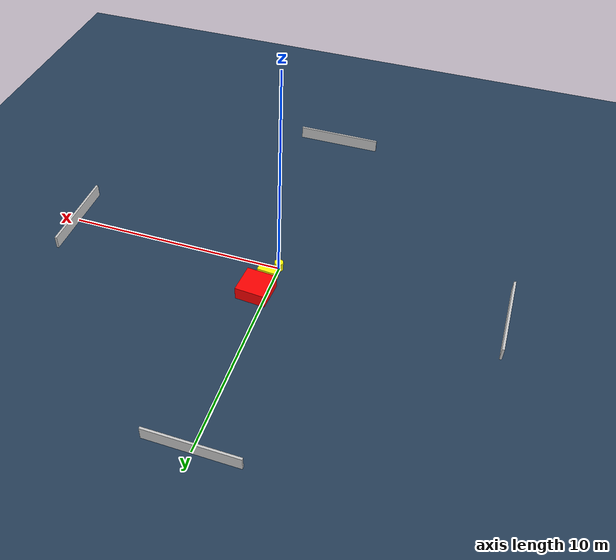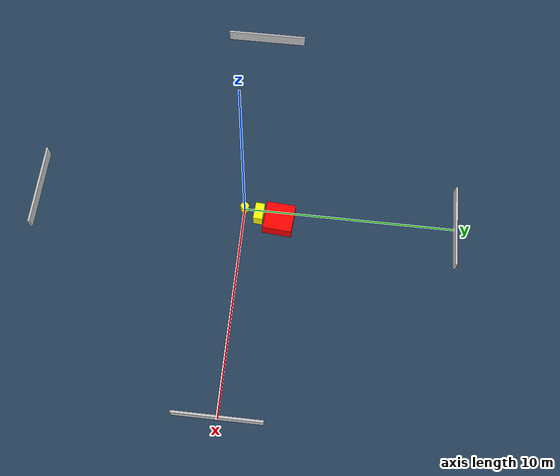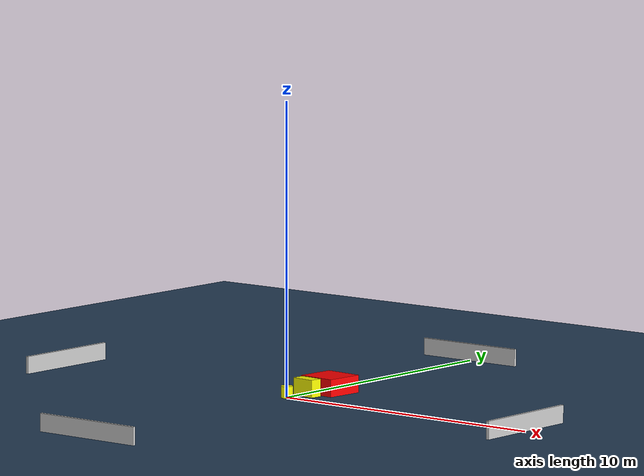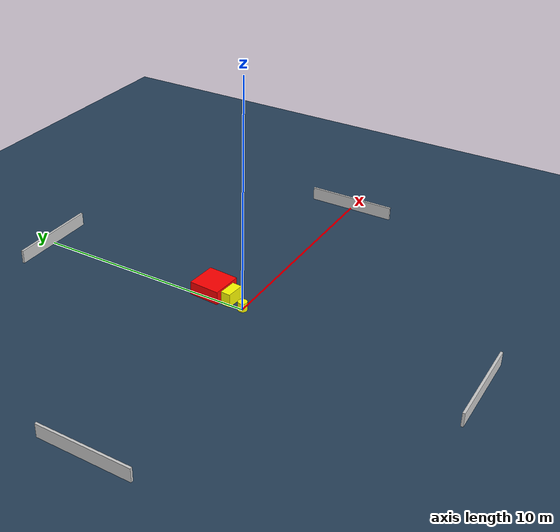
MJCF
<?xml version="1.0" ?>
<mujoco model="generated_environment">
  <option timestep="0.01" integrator="RK4" cone="elliptic"/>
  <default>
    <geom density="1"/>
  </default>
  <asset>
    <texture builtin="gradient" height="3072" name="skybox" rgb1="0.3 0.5 0.7" rgb2="0 0 0" type="skybox" width="512"/>
    <texture builtin="checker" height="300" name="groundplane" rgb1="0.2 0.3 0.4" rgb2="0.1 0.2 0.3" type="2d" width="300"/>
    <material name="groundplane" reflectance="0.2" texrepeat="5 5" texture="groundplane"/>
  </asset>
  <worldbody>
    <light dir="0 0 -1" directional="true" pos="0 0 1.5"/>
    <geom condim="3" friction="0.5 0.005 0.001" material="groundplane" name="floor" pos="0 0 0" size="0 0 0.05" type="plane"/>
    <body name="walls">
      <geom name="wall_1" condim="4" pos="-10.0 0.0 0.3" rgba="0.800000011920929 0.800000011920929 0.800000011920929 1.0" size="0.05 2.0 0.3" type="box"/>
      <geom name="wall_2" condim="4" pos="10.0 0.0 0.3" rgba="0.800000011920929 0.800000011920929 0.800000011920929 1.0" size="0.05 2.0 0.3" type="box"/>
      <geom name="wall_3" condim="4" pos="0.0 -10.0 0.3" rgba="0.800000011920929 0.800000011920929 0.800000011920929 1.0" size="2.0 0.05 0.3" type="box"/>
      <geom name="wall_4" condim="4" pos="0.0 10.0 0.3" rgba="0.800000011920929 0.800000011920929 0.800000011920929 1.0" size="2.0 0.05 0.3" type="box"/>
    </body>
    <body name="robot">
      <joint name="joint_x" type="slide" pos="0 0 0" axis="1 0 0"/>
      <joint name="joint_y" type="slide" pos="0 0 0" axis="0 1 0"/>
      <geom name="robot" type="cylinder" pos="0.0 0.0 0.2" size="0.2 0.2 0.0" mass="5.0" friction="1.0 0.005 0.0001" condim="4" rgba="1.0 1.0 0.0 1.0"/>
    </body>
    <body name="obstacle_1_movable">
      <geom name="obstacle_1_movable" condim="4" pos="0.28094114080160004 0.712057353196937 0.3" euler="0 0 355.4638466454874" friction="0.0 0.005 0.001" rgba="1.0 1.0 0.0 1.0" size="0.41643240127616243 0.21638973096746889 0.3" type="box" mass="0.1"/>
      <joint type="free"/>
    </body>
    <body name="obstacle_2_static">
      <geom name="obstacle_2_static" condim="4" pos="0.47379665682641436 1.6890300657705977 0.3" euler="0 0 85.83636354533066" friction="0.0 0.005 0.001" rgba="1.0 0.0 0.0 1.0" size="0.6815193575975178 0.6861618296279217 0.3" type="box"/>
    </body>
  </worldbody>
  <actuator>
    <motor name="actuator_x" joint="joint_x" gear="1" ctrlrange="-1 1"/>
    <motor name="actuator_y" joint="joint_y" gear="1" ctrlrange="-1 1"/>
  </actuator>
</mujoco>
